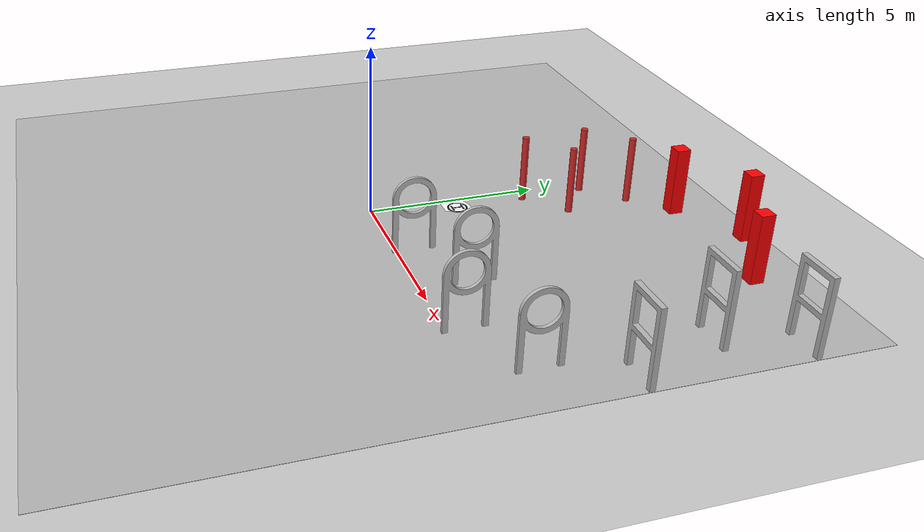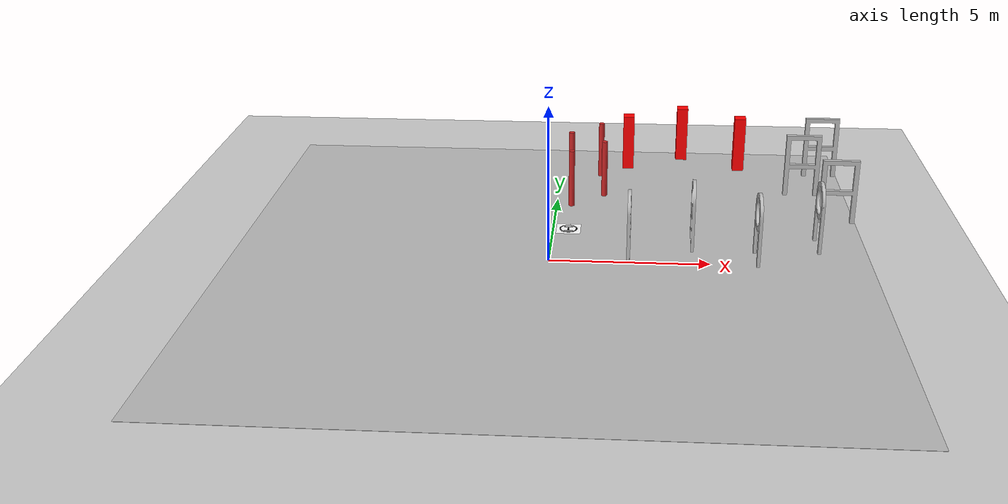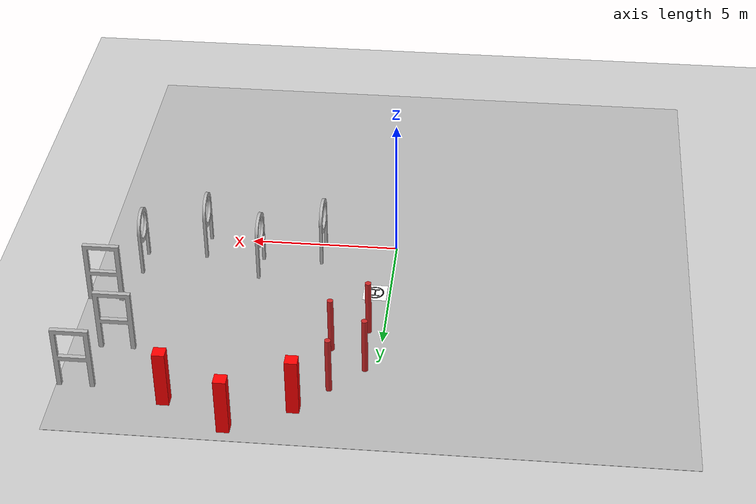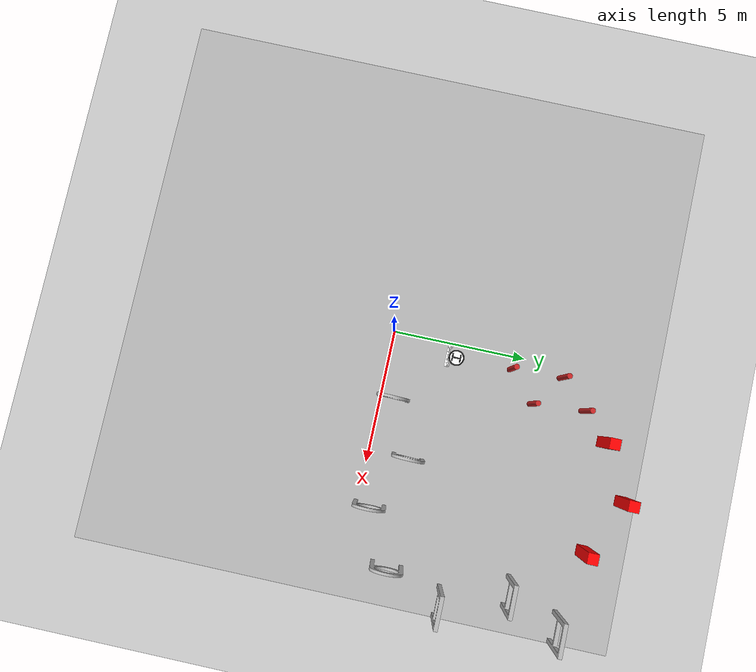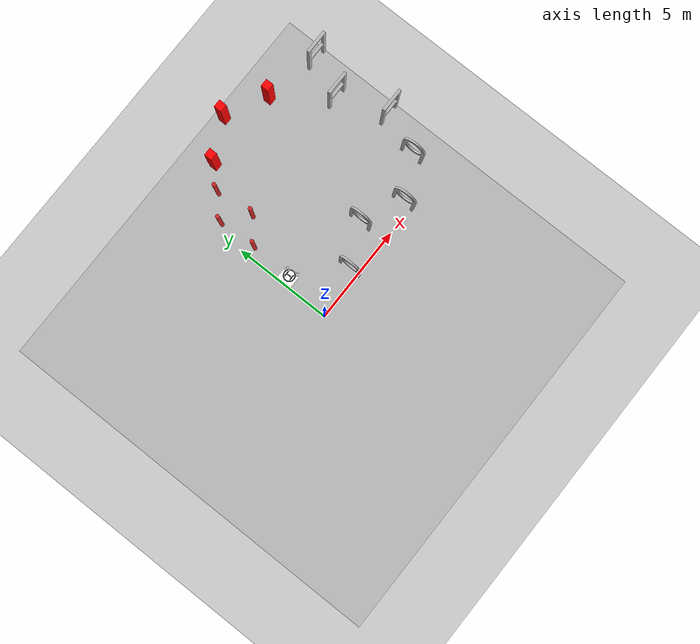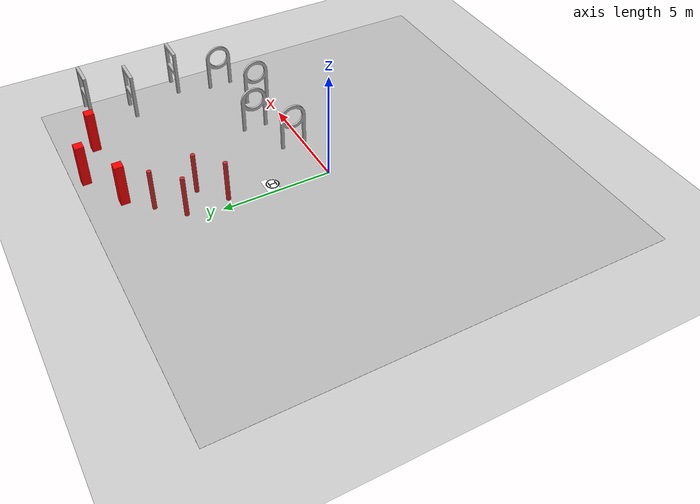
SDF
<sdf version="1.7">
 <world name="default">
  <light name="sun" type="directional">
   <pose>0 0 10 0 -0 0</pose>
   <diffuse>0.8 0.8 0.8 1</diffuse>
   <specular>0.2 0.2 0.2 1</specular>
   <attenuation>
    <range>1000</range>
    <constant>0.9</constant>
    <linear>0.01</linear>
    <quadratic>0.001</quadratic>
   </attenuation>
   <direction>-0.5 0.1 -0.9</direction>
   <spot><inner_angle>0</inner_angle><outer_angle>0</outer_angle><falloff>0</falloff></spot>
  </light>
  <model name="ground_plane">
   <static>1</static>
   <link name="link">
    <collision name="collision">
     <geometry><plane><normal>0 0 1</normal><size>100 100</size></plane></geometry>
     <surface><friction><ode><mu>100</mu><mu2>50</mu2></ode></friction></surface>
    </collision>
    <visual name="visual">
     <cast_shadows>0</cast_shadows>
     <geometry><plane><normal>0 0 1</normal><size>100 100</size></plane></geometry>
     <material>
      <script><uri>file://media/materials/scripts/gazebo.material</uri><name>Gazebo/Grey</name></script>
     </material>
    </visual>
   </link>
  </model>
  <gravity>0 0 -9.8</gravity>
  <magnetic_field>6e-06 2.3e-05 -4.2e-05</magnetic_field>
  <atmosphere type="adiabatic"/>
  <physics type="ode">
   <max_step_size>0.001</max_step_size>
   <real_time_factor>1</real_time_factor>
   <real_time_update_rate>1000</real_time_update_rate>
  </physics>
  <scene><ambient>0.4 0.4 0.4 1</ambient><background>0.7 0.7 0.7 1</background><shadows>1</shadows></scene>
  <spherical_coordinates>
   <surface_model>EARTH_WGS84</surface_model>
   <latitude_deg>0</latitude_deg>
   <longitude_deg>0</longitude_deg>
   <elevation>0</elevation>
   <heading_deg>0</heading_deg>
  </spherical_coordinates>
  <model name="land_marker_H_50cm">
   <static>1</static>
   <link name="main_link">
    <visual name="base">
     <geometry><box><size>0.8 0.8 0.01</size></box></geometry>
     <material><ambient>1 1 1 1</ambient><diffuse>1 1 1 1</diffuse></material>
    </visual>
    <visual name="outer_ring">
     <pose>0 0 0.005 0 -0 0</pose>
     <geometry><cylinder><radius>0.3</radius><length>0.01</length></cylinder></geometry>
     <material><ambient>0 0 0 1</ambient><diffuse>0 0 0 1</diffuse></material>
    </visual>
    <visual name="inner_circle">
     <pose>0 0 0.006 0 -0 0</pose>
     <geometry><cylinder><radius>0.25</radius><length>0.01</length></cylinder></geometry>
     <material><ambient>1 1 1 1</ambient><diffuse>1 1 1 1</diffuse></material>
    </visual>
    <visual name="h_vertical">
     <pose>0 0 0.007 0 -0 0</pose>
     <geometry><box><size>0.05 0.3 0.01</size></box></geometry>
     <material><ambient>0 0 0 1</ambient><diffuse>0 0 0 1</diffuse></material>
    </visual>
    <visual name="h_top">
     <pose>0 0.15 0.007 0 -0 0</pose>
     <geometry><box><size>0.3 0.05 0.01</size></box></geometry>
     <material><ambient>0 0 0 1</ambient><diffuse>0 0 0 1</diffuse></material>
    </visual>
    <visual name="h_bottom">
     <pose>0 -0.15 0.007 0 -0 0</pose>
     <geometry><box><size>0.3 0.05 0.01</size></box></geometry>
     <material><ambient>0 0 0 1</ambient><diffuse>0 0 0 1</diffuse></material>
    </visual>
   </link>
   <pose>0.489515 2.4907 0 0 -0 0</pose>
  </model>
  <model name="circle_window_90cm">
   <link name="link">
    <collision name="collision">
     <geometry><mesh><uri>model://circle_window_90cm/meshes/circle_window_90cm.stl</uri></mesh></geometry>
    </collision>
    <visual name="visual">
     <geometry>
      <mesh><scale>1 1 1</scale><uri>model://circle_window_90cm/meshes/circle_window_90cm.stl</uri></mesh>
     </geometry>
    </visual>
    <inertial>
     <inertia><ixx>1</ixx><ixy>0</ixy><ixz>0</ixz><iyy>1</iyy><iyz>0</iyz><izz>1</izz></inertia>
     <mass>1</mass>
    </inertial>
   </link>
   <pose>2.41848 0.490617 -1e-06 -0.002685 -0 1.55199</pose>
  </model>
  <model name="circle_window_90cm_0">
   <link name="link">
    <collision name="collision">
     <geometry><mesh><uri>model://circle_window_90cm/meshes/circle_window_90cm.stl</uri></mesh></geometry>
    </collision>
    <visual name="visual">
     <geometry>
      <mesh><scale>1 1 1</scale><uri>model://circle_window_90cm/meshes/circle_window_90cm.stl</uri></mesh>
     </geometry>
    </visual>
    <inertial>
     <inertia><ixx>1</ixx><ixy>0</ixy><ixz>0</ixz><iyy>1</iyy><iyz>0</iyz><izz>1</izz></inertia>
     <mass>1</mass>
    </inertial>
   </link>
   <pose>4.44042 1.47331 -0 -0.002756 -0 1.5476</pose>
  </model>
  <model name="circle_window_90cm_1">
   <link name="link">
    <collision name="collision">
     <geometry><mesh><uri>model://circle_window_90cm/meshes/circle_window_90cm.stl</uri></mesh></geometry>
    </collision>
    <visual name="visual">
     <geometry>
      <mesh><scale>1 1 1</scale><uri>model://circle_window_90cm/meshes/circle_window_90cm.stl</uri></mesh>
     </geometry>
    </visual>
    <inertial>
     <inertia><ixx>1</ixx><ixy>0</ixy><ixz>0</ixz><iyy>1</iyy><iyz>0</iyz><izz>1</izz></inertia>
     <mass>1</mass>
    </inertial>
   </link>
   <pose>6.40853 0.474607 -1e-06 -0.002249 -0 1.58478</pose>
  </model>
  <model name="circle_window_90cm_2">
   <link name="link">
    <collision name="collision">
     <geometry><mesh><uri>model://circle_window_90cm/meshes/circle_window_90cm.stl</uri></mesh></geometry>
    </collision>
    <visual name="visual">
     <geometry>
      <mesh><scale>1 1 1</scale><uri>model://circle_window_90cm/meshes/circle_window_90cm.stl</uri></mesh>
     </geometry>
    </visual>
    <inertial>
     <inertia><ixx>1</ixx><ixy>0</ixy><ixz>0</ixz><iyy>1</iyy><iyz>0</iyz><izz>1</izz></inertia>
     <mass>1</mass>
    </inertial>
   </link>
   <pose>8.41627 1.54827 -1e-06 -0.000108 -0 1.58111</pose>
  </model>
  <model name="cylinder_10cm">
   <link name="link">
    <visual name="visual">
     <geometry><cylinder><radius>0.1</radius><length>2</length></cylinder></geometry>
     <material>
      <script><uri>file://media/materials/scripts/gazebo.material</uri><name>Gazebo/Red</name></script>
     </material>
    </visual>
    <collision name="collision">
     <geometry><cylinder><radius>0.1</radius><length>2</length></cylinder></geometry>
    </collision>
    <inertial>
     <mass>1</mass>
     <inertia><ixx>0.3358</ixx><ixy>0</ixy><ixz>0</ixz><iyy>0.3358</iyy><iyz>0</iyz><izz>0.005</izz></inertia>
    </inertial>
   </link>
   <pose>0.49588 4.53461 1 0 -0 -5.1e-05</pose>
  </model>
  <model name="cylinder_10cm_0">
   <link name="link">
    <visual name="visual">
     <geometry><cylinder><radius>0.1</radius><length>2</length></cylinder></geometry>
     <material>
      <script><uri>file://media/materials/scripts/gazebo.material</uri><name>Gazebo/Red</name></script>
     </material>
    </visual>
    <collision name="collision">
     <geometry><cylinder><radius>0.1</radius><length>2</length></cylinder></geometry>
    </collision>
    <inertial>
     <mass>1</mass>
     <inertia><ixx>0.3358</ixx><ixy>0</ixy><ixz>0</ixz><iyy>0.3358</iyy><iyz>0</iyz><izz>0.005</izz></inertia>
    </inertial>
   </link>
   <pose>1.59685 5.52475 0.999991 0 1e-06 -6.8e-05</pose>
  </model>
  <model name="cylinder_10cm_1">
   <link name="link">
    <visual name="visual">
     <geometry><cylinder><radius>0.1</radius><length>2</length></cylinder></geometry>
     <material>
      <script><uri>file://media/materials/scripts/gazebo.material</uri><name>Gazebo/Red</name></script>
     </material>
    </visual>
    <collision name="collision">
     <geometry><cylinder><radius>0.1</radius><length>2</length></cylinder></geometry>
    </collision>
    <inertial>
     <mass>1</mass>
     <inertia><ixx>0.3358</ixx><ixy>0</ixy><ixz>0</ixz><iyy>0.3358</iyy><iyz>0</iyz><izz>0.005</izz></inertia>
    </inertial>
   </link>
   <pose>0.414117 6.43037 0.999991 -1e-06 -0 -3.1e-05</pose>
  </model>
  <model name="cylinder_10cm_2">
   <link name="link">
    <visual name="visual">
     <geometry><cylinder><radius>0.1</radius><length>2</length></cylinder></geometry>
     <material>
      <script><uri>file://media/materials/scripts/gazebo.material</uri><name>Gazebo/Red</name></script>
     </material>
    </visual>
    <collision name="collision">
     <geometry><cylinder><radius>0.1</radius><length>2</length></cylinder></geometry>
    </collision>
    <inertial>
     <mass>1</mass>
     <inertia><ixx>0.3358</ixx><ixy>0</ixy><ixz>0</ixz><iyy>0.3358</iyy><iyz>0</iyz><izz>0.005</izz></inertia>
    </inertial>
   </link>
   <pose>1.44009 7.46397 0.999991 0 -0 -3.9e-05</pose>
  </model>
  <model name="red_cuboid">
   <link name="link">
    <visual name="visual">
     <geometry><box><size>0.4 0.4 2</size></box></geometry>
     <material><ambient>1 0 0 1</ambient><diffuse>1 0 0 1</diffuse><specular>0.1 0.1 0.1 1</specular></material>
    </visual>
    <collision name="collision"><geometry><box><size>0.4 0.4 2</size></box></geometry></collision>
    <inertial>
     <mass>1</mass>
     <inertia><ixx>0.3417</ixx><iyy>0.3417</iyy><izz>0.0067</izz><ixy>0</ixy><ixz>0</ixz><iyz>0</iyz></inertia>
    </inertial>
   </link>
   <pose>2.41797 8.45403 0.999999 1e-06 1e-06 -4.5e-05</pose>
  </model>
  <model name="red_cuboid_0">
   <link name="link">
    <visual name="visual">
     <geometry><box><size>0.4 0.4 2</size></box></geometry>
     <material><ambient>1 0 0 1</ambient><diffuse>1 0 0 1</diffuse><specular>0.1 0.1 0.1 1</specular></material>
    </visual>
    <collision name="collision"><geometry><box><size>0.4 0.4 2</size></box></geometry></collision>
    <inertial>
     <mass>1</mass>
     <inertia><ixx>0.3417</ixx><iyy>0.3417</iyy><izz>0.0067</izz><ixy>0</ixy><ixz>0</ixz><iyz>0</iyz></inertia>
    </inertial>
   </link>
   <pose>4.40998 9.51125 1 1e-06 1e-06 -1e-06</pose>
  </model>
  <model name="red_cuboid_1">
   <link name="link">
    <visual name="visual">
     <geometry><box><size>0.4 0.4 2</size></box></geometry>
     <material><ambient>1 0 0 1</ambient><diffuse>1 0 0 1</diffuse><specular>0.1 0.1 0.1 1</specular></material>
    </visual>
    <collision name="collision"><geometry><box><size>0.4 0.4 2</size></box></geometry></collision>
    <inertial>
     <mass>1</mass>
     <inertia><ixx>0.3417</ixx><iyy>0.3417</iyy><izz>0.0067</izz><ixy>0</ixy><ixz>0</ixz><iyz>0</iyz></inertia>
    </inertial>
   </link>
   <pose>6.4668 8.4559 1 -1e-06 1e-06 -2e-05</pose>
  </model>
  <model name="circle_window_90cm_3">
   <link name="link">
    <collision name="collision">
     <geometry><mesh><uri>model://sqaure_window_90cm/meshes/sqaure_window_90cm.stl</uri></mesh></geometry>
    </collision>
    <visual name="visual">
     <geometry>
      <mesh><scale>1 1 1</scale><uri>model://sqaure_window_90cm/meshes/sqaure_window_90cm.stl</uri></mesh>
     </geometry>
    </visual>
    <inertial>
     <inertia><ixx>1</ixx><ixy>0</ixy><ixz>0</ixz><iyy>1</iyy><iyz>0</iyz><izz>1</izz></inertia>
     <mass>1</mass>
    </inertial>
   </link>
   <pose>9.36985 3.60195 -3e-06 -1e-06 0 0</pose>
  </model>
  <model name="circle_window_90cm_4">
   <link name="link">
    <collision name="collision">
     <geometry><mesh><uri>model://sqaure_window_90cm/meshes/sqaure_window_90cm.stl</uri></mesh></geometry>
    </collision>
    <visual name="visual">
     <geometry>
      <mesh><scale>1 1 1</scale><uri>model://sqaure_window_90cm/meshes/sqaure_window_90cm.stl</uri></mesh>
     </geometry>
    </visual>
    <inertial>
     <inertia><ixx>1</ixx><ixy>0</ixy><ixz>0</ixz><iyy>1</iyy><iyz>0</iyz><izz>1</izz></inertia>
     <mass>1</mass>
    </inertial>
   </link>
   <pose>8.46758 6.01557 -1e-06 1e-06 -0 0</pose>
  </model>
  <model name="circle_window_90cm_5">
   <link name="link">
    <collision name="collision">
     <geometry><mesh><uri>model://sqaure_window_90cm/meshes/sqaure_window_90cm.stl</uri></mesh></geometry>
    </collision>
    <visual name="visual">
     <geometry>
      <mesh><scale>1 1 1</scale><uri>model://sqaure_window_90cm/meshes/sqaure_window_90cm.stl</uri></mesh>
     </geometry>
    </visual>
    <inertial>
     <inertia><ixx>1</ixx><ixy>0</ixy><ixz>0</ixz><iyy>1</iyy><iyz>0</iyz><izz>1</izz></inertia>
     <mass>1</mass>
    </inertial>
   </link>
   <pose>9.35981 7.92928 -1e-05 0 6e-06 0</pose>
  </model>
  <model name="yundrone_logo">
   <static>1</static>
   <link name="yundrone_logo">
    <visual name="visual">
     <cast_shadows>0</cast_shadows>
     <geometry><box><size>20 20 0.01</size></box></geometry>
     <material>
      <script><uri>model://yundrone_logo/yundrone_logo.material</uri><name>yundrone_logo</name></script>
     </material>
    </visual>
   </link>
   <pose>-0.010518 0.067068 0 0 -0 0</pose>
  </model>
 </world>
</sdf>
